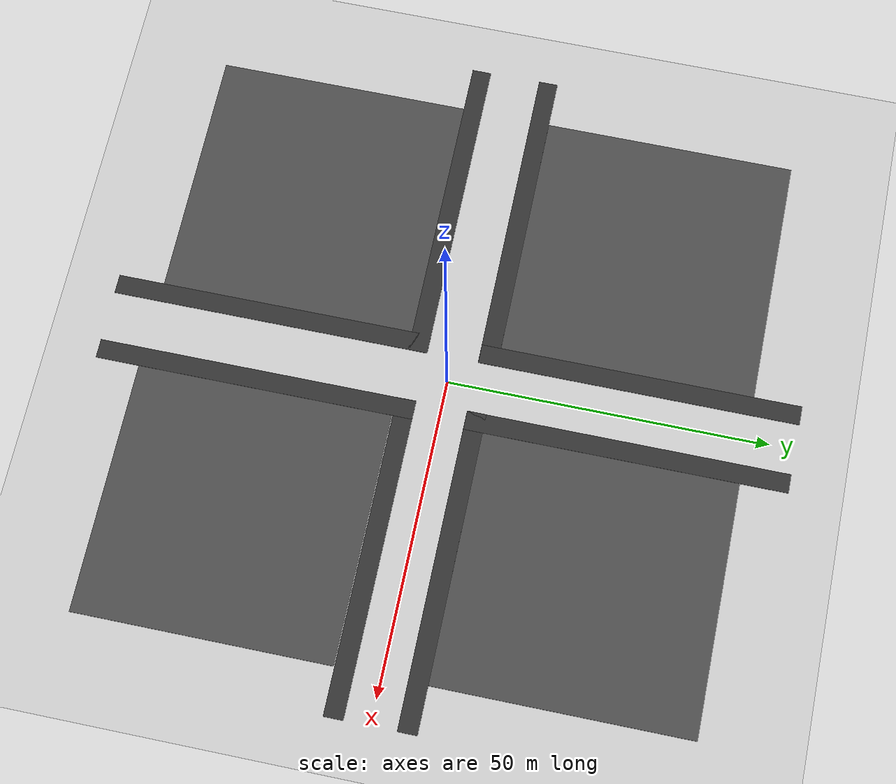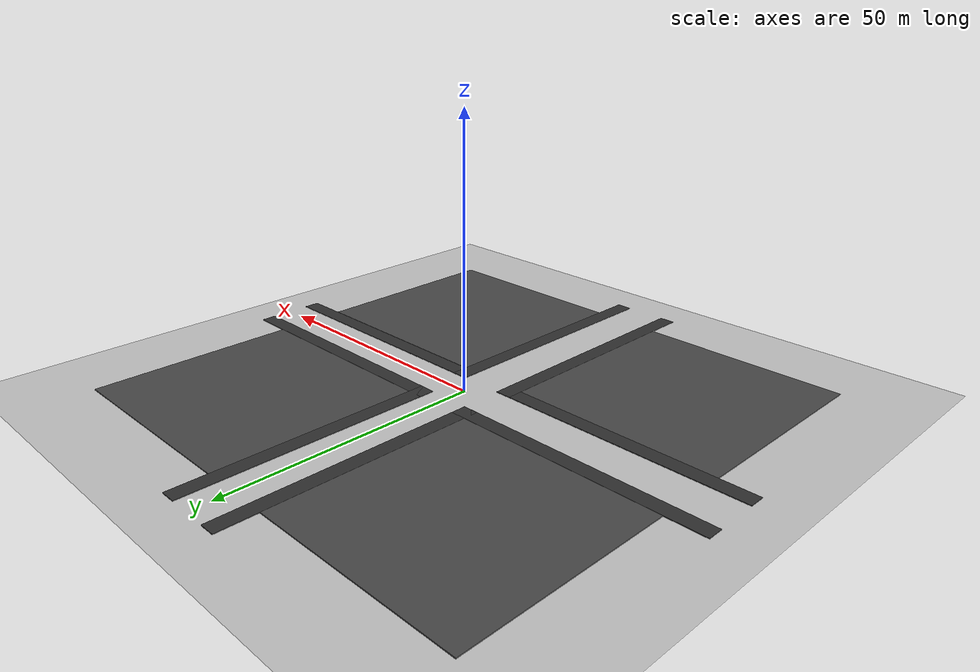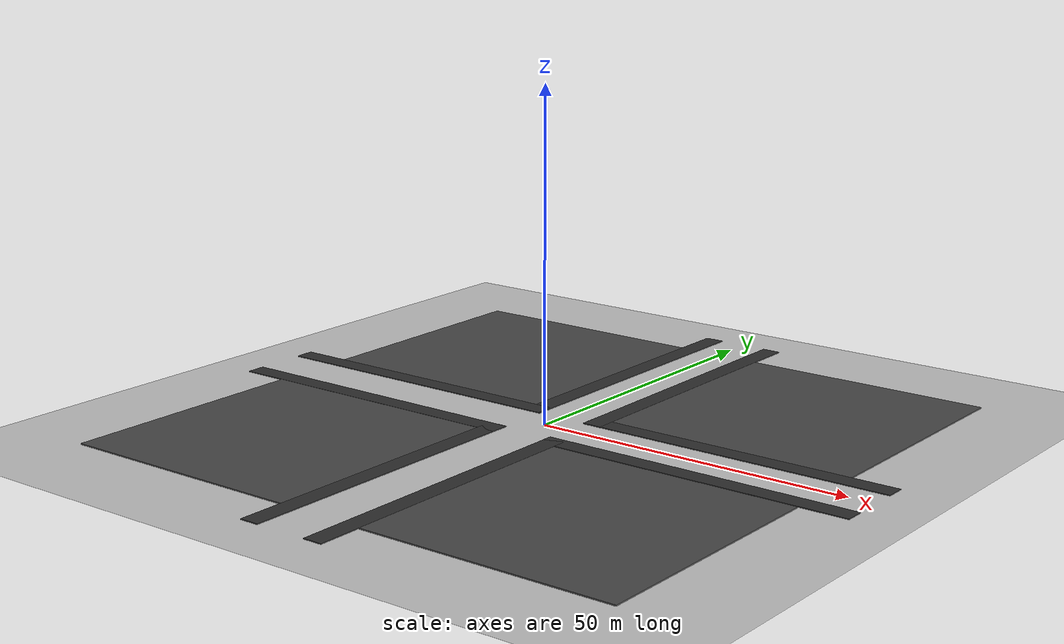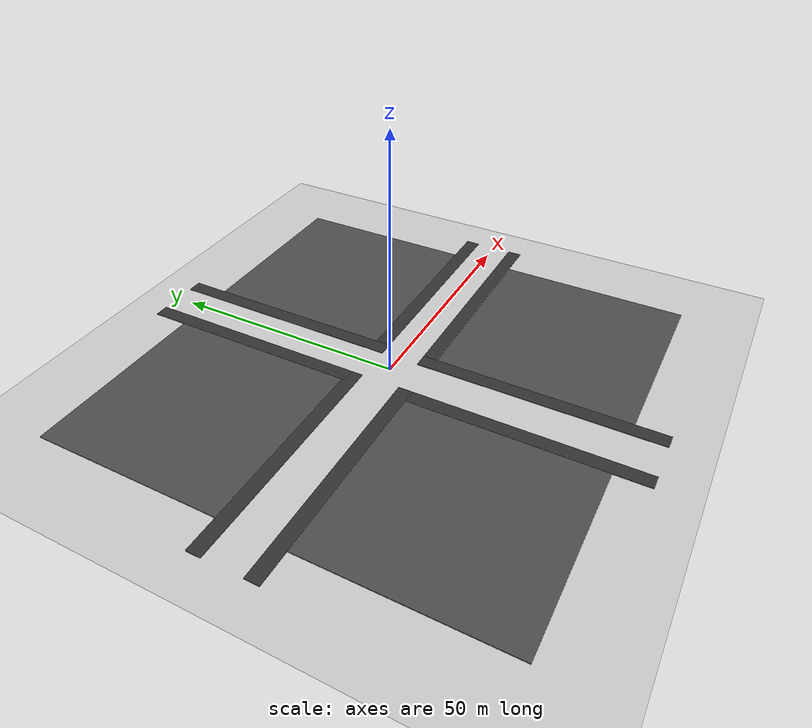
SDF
<sdf version="1.6">
 <world name="default">
  <light name="sun" type="directional">
   <pose>0 0 1000 0 -0 0</pose>
   <diffuse>0.8 0.8 0.8 1</diffuse>
   <specular>0.5 0.5 0.5 1</specular>
   <attenuation>
    <range>1000</range>
    <constant>0.9</constant>
    <linear>0.01</linear>
    <quadratic>0.001</quadratic>
   </attenuation>
   <direction>-0.5 0.1 -0.4</direction>
  </light>
  <model name="ground_plane">
   <static>1</static>
   <link name="link">
    <collision name="collision">
     <geometry><plane><normal>0 0 1</normal><size>100 100</size></plane></geometry>
     <surface><friction><ode><mu>100</mu><mu2>50</mu2></ode></friction></surface>
    </collision>
    <visual name="visual">
     <cast_shadows>0</cast_shadows>
     <geometry><plane><normal>0 0 1</normal><size>100 100</size></plane></geometry>
     <material>
      <script><uri>file://media/materials/scripts/gazebo.material</uri><name>Gazebo/Grey</name></script>
     </material>
    </visual>
   </link>
  </model>
  <model name="sidewalk_x1">
   <static>1</static>
   <pose>5.50519 -29.003 0.011 0 -0 0</pose>
   <link name="link">
    <collision name="collision"><geometry><box><size>3 50 0.15</size></box></geometry></collision>
    <visual name="visual">
     <geometry><box><size>3 50 0.15</size></box></geometry>
     <material><ambient>0.2 0.2 0.2 1</ambient></material>
    </visual>
   </link>
  </model>
  <model name="sidewalk_x2">
   <static>1</static>
   <pose>5.47009 28.9669 0.011 0 -0 0</pose>
   <link name="link">
    <collision name="collision"><geometry><box><size>3 50 0.15</size></box></geometry></collision>
    <visual name="visual">
     <geometry><box><size>3 50 0.15</size></box></geometry>
     <material><ambient>0.2 0.2 0.2 1</ambient></material>
    </visual>
   </link>
  </model>
  <model name="sidewalk_x3">
   <static>1</static>
   <pose>-5.6405 29.0409 0.011 0 -0 0</pose>
   <link name="link">
    <collision name="collision"><geometry><box><size>3 50 0.15</size></box></geometry></collision>
    <visual name="visual">
     <geometry><box><size>3 50 0.15</size></box></geometry>
     <material><ambient>0.2 0.2 0.2 1</ambient></material>
    </visual>
   </link>
  </model>
  <model name="sidewalk_x4">
   <static>1</static>
   <pose>-5.54232 -29.0154 0.011 0 -0 0</pose>
   <link name="link">
    <collision name="collision"><geometry><box><size>3 50 0.15</size></box></geometry></collision>
    <visual name="visual">
     <geometry><box><size>3 50 0.15</size></box></geometry>
     <material><ambient>0.2 0.2 0.2 1</ambient></material>
    </visual>
   </link>
  </model>
  <model name="sidewalk_y1">
   <static>1</static>
   <pose>-29.1463 5.50152 0.011 0 -0 0</pose>
   <link name="link">
    <collision name="collision"><geometry><box><size>50 3 0.15</size></box></geometry></collision>
    <visual name="visual">
     <geometry><box><size>50 3 0.15</size></box></geometry>
     <material><ambient>0.2 0.2 0.2 1</ambient></material>
    </visual>
   </link>
  </model>
  <model name="sidewalk_y2">
   <static>1</static>
   <pose>28.9804 -5.50759 0.011 0 -0 0</pose>
   <link name="link">
    <collision name="collision"><geometry><box><size>50 3 0.15</size></box></geometry></collision>
    <visual name="visual">
     <geometry><box><size>50 3 0.15</size></box></geometry>
     <material><ambient>0.2 0.2 0.2 1</ambient></material>
    </visual>
   </link>
  </model>
  <model name="sidewalk_y3">
   <static>1</static>
   <pose>28.9466 5.44984 0.011 0 -0 0</pose>
   <link name="link">
    <collision name="collision"><geometry><box><size>50 3 0.15</size></box></geometry></collision>
    <visual name="visual">
     <geometry><box><size>50 3 0.15</size></box></geometry>
     <material><ambient>0.2 0.2 0.2 1</ambient></material>
    </visual>
   </link>
  </model>
  <model name="sidewalk_y4">
   <static>1</static>
   <pose>-29.0516 -5.53429 0.011 0 -0 0</pose>
   <link name="link">
    <collision name="collision"><geometry><box><size>50 3 0.15</size></box></geometry></collision>
    <visual name="visual">
     <geometry><box><size>50 3 0.15</size></box></geometry>
     <material><ambient>0.2 0.2 0.2 1</ambient></material>
    </visual>
   </link>
  </model>
  <gravity>0 0 -9.8</gravity>
  <magnetic_field>6e-06 2.3e-05 -4.2e-05</magnetic_field>
  <atmosphere type="adiabatic"/>
  <scene><ambient>0.4 0.4 0.4 1</ambient><background>0.7 0.7 0.7 1</background><shadows>1</shadows></scene>
  <audio><device>default</device></audio>
  <model name="asphalt_plane">
   <static>1</static>
   <link name="link">
    <collision name="collision"><geometry><box><size>40 40 0.2</size></box></geometry></collision>
    <visual name="visual">
     <cast_shadows>0</cast_shadows>
     <geometry><box><size>40 40 0.2</size></box></geometry>
     <material>
      <script>
       <uri>model://asphalt_plane/materials/scripts</uri>
       <uri>model://asphalt_plane/materials/textures</uri>
       <name>vrc/asphalt</name>
      </script>
     </material>
    </visual>
   </link>
   <pose>26.5204 26.5585 -0.05 0 -0 0</pose>
  </model>
  <model name="asphalt_plane_0">
   <static>1</static>
   <link name="link">
    <collision name="collision"><geometry><box><size>40 40 0.2</size></box></geometry></collision>
    <visual name="visual">
     <cast_shadows>0</cast_shadows>
     <geometry><box><size>40 40 0.2</size></box></geometry>
     <material>
      <script>
       <uri>model://asphalt_plane/materials/scripts</uri>
       <uri>model://asphalt_plane/materials/textures</uri>
       <name>vrc/asphalt</name>
      </script>
     </material>
    </visual>
   </link>
   <pose>-26.7004 26.5761 -0.05 0 -0 0</pose>
  </model>
  <model name="asphalt_plane_1">
   <static>1</static>
   <link name="link">
    <collision name="collision"><geometry><box><size>40 40 0.2</size></box></geometry></collision>
    <visual name="visual">
     <cast_shadows>0</cast_shadows>
     <geometry><box><size>40 40 0.2</size></box></geometry>
     <material>
      <script>
       <uri>model://asphalt_plane/materials/scripts</uri>
       <uri>model://asphalt_plane/materials/textures</uri>
       <name>vrc/asphalt</name>
      </script>
     </material>
    </visual>
   </link>
   <pose>-26.7779 -26.8299 -0.05 0 -0 0</pose>
  </model>
  <model name="asphalt_plane_2">
   <static>1</static>
   <link name="link">
    <collision name="collision"><geometry><box><size>40 40 0.2</size></box></geometry></collision>
    <visual name="visual">
     <cast_shadows>0</cast_shadows>
     <geometry><box><size>40 40 0.2</size></box></geometry>
     <material>
      <script>
       <uri>model://asphalt_plane/materials/scripts</uri>
       <uri>model://asphalt_plane/materials/textures</uri>
       <name>vrc/asphalt</name>
      </script>
     </material>
    </visual>
   </link>
   <pose>26.5294 -27.153 -0.05 0 -0 0</pose>
  </model>
  <physics name="default_physics" default="0" type="ode">
   <max_step_size>0.001</max_step_size>
   <real_time_factor>1</real_time_factor>
   <real_time_update_rate>1000</real_time_update_rate>
  </physics>
  <spherical_coordinates>
   <surface_model>EARTH_WGS84</surface_model>
   <latitude_deg>0</latitude_deg>
   <longitude_deg>0</longitude_deg>
   <elevation>0</elevation>
   <heading_deg>0</heading_deg>
  </spherical_coordinates>
 </world>
</sdf>
